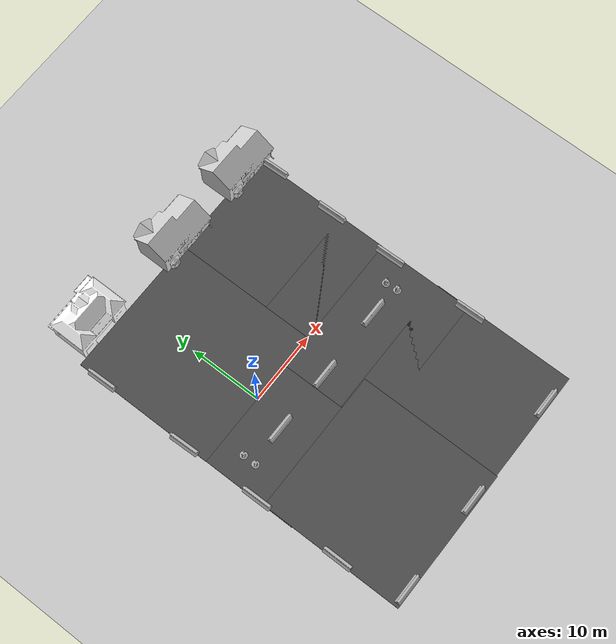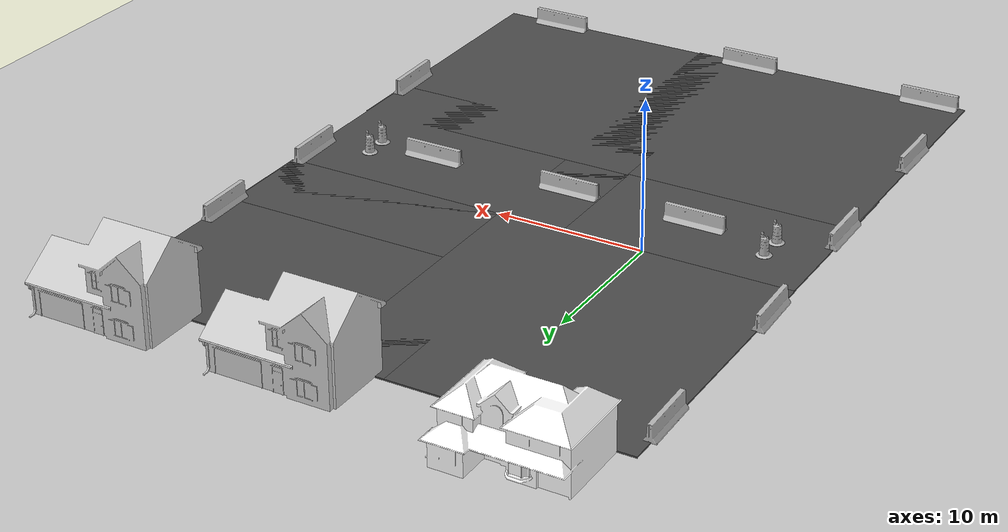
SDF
<sdf version="1.7">
 <world name="default">
  <light name="sun" type="directional">
   <pose>0 0 10 0 -0 0</pose>
   <diffuse>0.8 0.8 0.8 1</diffuse>
   <specular>0.2 0.2 0.2 1</specular>
   <attenuation>
    <range>1000</range>
    <constant>0.9</constant>
    <linear>0.01</linear>
    <quadratic>0.001</quadratic>
   </attenuation>
   <direction>-0.5 0.1 -0.9</direction>
   <spot><inner_angle>0</inner_angle><outer_angle>0</outer_angle><falloff>0</falloff></spot>
  </light>
  <model name="ground_plane">
   <static>1</static>
   <link name="link">
    <collision name="collision">
     <geometry><plane><normal>0 0 1</normal><size>100 100</size></plane></geometry>
     <surface><friction><ode><mu>100</mu><mu2>50</mu2></ode></friction></surface>
    </collision>
    <visual name="visual">
     <cast_shadows>0</cast_shadows>
     <geometry><plane><normal>0 0 1</normal><size>100 100</size></plane></geometry>
     <material>
      <script><uri>file://media/materials/scripts/gazebo.material</uri><name>Gazebo/Grey</name></script>
     </material>
    </visual>
    <velocity_decay><linear>0</linear><angular>0</angular></velocity_decay>
   </link>
  </model>
  <physics type="ode">
   <max_step_size>0.001</max_step_size>
   <real_time_factor>1</real_time_factor>
   <real_time_update_rate>1000</real_time_update_rate>
  </physics>
  <scene><ambient>0.4 0.4 0.4 1</ambient><background>0.7 0.7 0.7 1</background><shadows>1</shadows></scene>
  <spherical_coordinates>
   <surface_model>EARTH_WGS84</surface_model>
   <latitude_deg>0</latitude_deg>
   <longitude_deg>0</longitude_deg>
   <elevation>0</elevation>
   <heading_deg>0</heading_deg>
  </spherical_coordinates>
  <model name="asphalt_plane">
   <static>1</static>
   <link name="link">
    <collision name="collision"><geometry><box><size>20 20 0.1</size></box></geometry></collision>
    <visual name="visual">
     <cast_shadows>0</cast_shadows>
     <geometry><box><size>20 20 0.1</size></box></geometry>
     <material>
      <script>
       <uri>model://asphalt_plane/materials/scripts</uri>
       <uri>model://asphalt_plane/materials/textures</uri>
       <name>vrc/asphalt</name>
      </script>
     </material>
    </visual>
    <velocity_decay><linear>0</linear><angular>0</angular></velocity_decay>
   </link>
   <pose>0.030437 -3.13546 0 0 -0 0</pose>
  </model>
  <model name="jersey_barrier">
   <static>1</static>
   <link name="link">
    <visual name="visual">
     <geometry><mesh><uri>model://jersey_barrier/meshes/jersey_barrier.dae</uri></mesh></geometry>
    </visual>
    <collision name="upright">
     <pose>0 0 0.5715 0 -0 0</pose>
     <geometry><box><size>4.06542 0.3063 1.143</size></box></geometry>
    </collision>
    <collision name="base">
     <pose>0 0 0.032258 0 -0 0</pose>
     <geometry><box><size>4.06542 0.8107 0.064516</size></box></geometry>
    </collision>
    <collision name="base2">
     <pose>0 0 0.1 0 -0 0</pose>
     <geometry><box><size>4.06542 0.65 0.1</size></box></geometry>
    </collision>
    <collision name="base3">
     <pose>0 0 0.2 0 -0 0</pose>
     <geometry><box><size>4.06542 0.5 0.1</size></box></geometry>
    </collision>
    <collision name="left-angle">
     <pose>0 -0.224 0.2401 0.9 -0 0</pose>
     <geometry><box><size>4.06542 0.5 0.064516</size></box></geometry>
    </collision>
    <collision name="right-angle">
     <pose>0 0.224 0.2401 -0.9 0 0</pose>
     <geometry><box><size>4.06542 0.5 0.064516</size></box></geometry>
    </collision>
    <velocity_decay><linear>0</linear><angular>0</angular></velocity_decay>
   </link>
   <pose>21.0984 -28.2425 0 0 -0 0</pose>
  </model>
  <model name="jersey_barrier_0">
   <static>1</static>
   <link name="link">
    <visual name="visual">
     <geometry><mesh><uri>model://jersey_barrier/meshes/jersey_barrier.dae</uri></mesh></geometry>
    </visual>
    <collision name="upright">
     <pose>0 0 0.5715 0 -0 0</pose>
     <geometry><box><size>4.06542 0.3063 1.143</size></box></geometry>
    </collision>
    <collision name="base">
     <pose>0 0 0.032258 0 -0 0</pose>
     <geometry><box><size>4.06542 0.8107 0.064516</size></box></geometry>
    </collision>
    <collision name="base2">
     <pose>0 0 0.1 0 -0 0</pose>
     <geometry><box><size>4.06542 0.65 0.1</size></box></geometry>
    </collision>
    <collision name="base3">
     <pose>0 0 0.2 0 -0 0</pose>
     <geometry><box><size>4.06542 0.5 0.1</size></box></geometry>
    </collision>
    <collision name="left-angle">
     <pose>0 -0.224 0.2401 0.9 -0 0</pose>
     <geometry><box><size>4.06542 0.5 0.064516</size></box></geometry>
    </collision>
    <collision name="right-angle">
     <pose>0 0.224 0.2401 -0.9 0 0</pose>
     <geometry><box><size>4.06542 0.5 0.064516</size></box></geometry>
    </collision>
    <velocity_decay><linear>0</linear><angular>0</angular></velocity_decay>
   </link>
   <pose>5.90195 -28.2526 0 0 -0 0</pose>
  </model>
  <model name="jersey_barrier_1">
   <static>1</static>
   <link name="link">
    <visual name="visual">
     <geometry><mesh><uri>model://jersey_barrier/meshes/jersey_barrier.dae</uri></mesh></geometry>
    </visual>
    <collision name="upright">
     <pose>0 0 0.5715 0 -0 0</pose>
     <geometry><box><size>4.06542 0.3063 1.143</size></box></geometry>
    </collision>
    <collision name="base">
     <pose>0 0 0.032258 0 -0 0</pose>
     <geometry><box><size>4.06542 0.8107 0.064516</size></box></geometry>
    </collision>
    <collision name="base2">
     <pose>0 0 0.1 0 -0 0</pose>
     <geometry><box><size>4.06542 0.65 0.1</size></box></geometry>
    </collision>
    <collision name="base3">
     <pose>0 0 0.2 0 -0 0</pose>
     <geometry><box><size>4.06542 0.5 0.1</size></box></geometry>
    </collision>
    <collision name="left-angle">
     <pose>0 -0.224 0.2401 0.9 -0 0</pose>
     <geometry><box><size>4.06542 0.5 0.064516</size></box></geometry>
    </collision>
    <collision name="right-angle">
     <pose>0 0.224 0.2401 -0.9 0 0</pose>
     <geometry><box><size>4.06542 0.5 0.064516</size></box></geometry>
    </collision>
    <velocity_decay><linear>0</linear><angular>0</angular></velocity_decay>
   </link>
   <pose>-7.47394 -28.3953 0 0 -0 0</pose>
  </model>
  <model name="jersey_barrier_2">
   <static>1</static>
   <link name="link">
    <visual name="visual">
     <geometry><mesh><uri>model://jersey_barrier/meshes/jersey_barrier.dae</uri></mesh></geometry>
    </visual>
    <collision name="upright">
     <pose>0 0 0.5715 0 -0 0</pose>
     <geometry><box><size>4.06542 0.3063 1.143</size></box></geometry>
    </collision>
    <collision name="base">
     <pose>0 0 0.032258 0 -0 0</pose>
     <geometry><box><size>4.06542 0.8107 0.064516</size></box></geometry>
    </collision>
    <collision name="base2">
     <pose>0 0 0.1 0 -0 0</pose>
     <geometry><box><size>4.06542 0.65 0.1</size></box></geometry>
    </collision>
    <collision name="base3">
     <pose>0 0 0.2 0 -0 0</pose>
     <geometry><box><size>4.06542 0.5 0.1</size></box></geometry>
    </collision>
    <collision name="left-angle">
     <pose>0 -0.224 0.2401 0.9 -0 0</pose>
     <geometry><box><size>4.06542 0.5 0.064516</size></box></geometry>
    </collision>
    <collision name="right-angle">
     <pose>0 0.224 0.2401 -0.9 0 0</pose>
     <geometry><box><size>4.06542 0.5 0.064516</size></box></geometry>
    </collision>
    <velocity_decay><linear>0</linear><angular>0</angular></velocity_decay>
   </link>
   <pose>-9.62184 -19.7051 0 0 0 -1.57192</pose>
  </model>
  <model name="jersey_barrier_3">
   <static>1</static>
   <link name="link">
    <visual name="visual">
     <geometry><mesh><uri>model://jersey_barrier/meshes/jersey_barrier.dae</uri></mesh></geometry>
    </visual>
    <collision name="upright">
     <pose>0 0 0.5715 0 -0 0</pose>
     <geometry><box><size>4.06542 0.3063 1.143</size></box></geometry>
    </collision>
    <collision name="base">
     <pose>0 0 0.032258 0 -0 0</pose>
     <geometry><box><size>4.06542 0.8107 0.064516</size></box></geometry>
    </collision>
    <collision name="base2">
     <pose>0 0 0.1 0 -0 0</pose>
     <geometry><box><size>4.06542 0.65 0.1</size></box></geometry>
    </collision>
    <collision name="base3">
     <pose>0 0 0.2 0 -0 0</pose>
     <geometry><box><size>4.06542 0.5 0.1</size></box></geometry>
    </collision>
    <collision name="left-angle">
     <pose>0 -0.224 0.2401 0.9 -0 0</pose>
     <geometry><box><size>4.06542 0.5 0.064516</size></box></geometry>
    </collision>
    <collision name="right-angle">
     <pose>0 0.224 0.2401 -0.9 0 0</pose>
     <geometry><box><size>4.06542 0.5 0.064516</size></box></geometry>
    </collision>
    <velocity_decay><linear>0</linear><angular>0</angular></velocity_decay>
   </link>
   <pose>25.0903 -13.975 0 0 0 -1.55011</pose>
  </model>
  <model name="jersey_barrier_4">
   <static>1</static>
   <link name="link">
    <visual name="visual">
     <geometry><mesh><uri>model://jersey_barrier/meshes/jersey_barrier.dae</uri></mesh></geometry>
    </visual>
    <collision name="upright">
     <pose>0 0 0.5715 0 -0 0</pose>
     <geometry><box><size>4.06542 0.3063 1.143</size></box></geometry>
    </collision>
    <collision name="base">
     <pose>0 0 0.032258 0 -0 0</pose>
     <geometry><box><size>4.06542 0.8107 0.064516</size></box></geometry>
    </collision>
    <collision name="base2">
     <pose>0 0 0.1 0 -0 0</pose>
     <geometry><box><size>4.06542 0.65 0.1</size></box></geometry>
    </collision>
    <collision name="base3">
     <pose>0 0 0.2 0 -0 0</pose>
     <geometry><box><size>4.06542 0.5 0.1</size></box></geometry>
    </collision>
    <collision name="left-angle">
     <pose>0 -0.224 0.2401 0.9 -0 0</pose>
     <geometry><box><size>4.06542 0.5 0.064516</size></box></geometry>
    </collision>
    <collision name="right-angle">
     <pose>0 0.224 0.2401 -0.9 0 0</pose>
     <geometry><box><size>4.06542 0.5 0.064516</size></box></geometry>
    </collision>
    <velocity_decay><linear>0</linear><angular>0</angular></velocity_decay>
   </link>
   <pose>-9.79209 -7.708 0 0 0 -1.56057</pose>
  </model>
  <model name="jersey_barrier_5">
   <static>1</static>
   <link name="link">
    <visual name="visual">
     <geometry><mesh><uri>model://jersey_barrier/meshes/jersey_barrier.dae</uri></mesh></geometry>
    </visual>
    <collision name="upright">
     <pose>0 0 0.5715 0 -0 0</pose>
     <geometry><box><size>4.06542 0.3063 1.143</size></box></geometry>
    </collision>
    <collision name="base">
     <pose>0 0 0.032258 0 -0 0</pose>
     <geometry><box><size>4.06542 0.8107 0.064516</size></box></geometry>
    </collision>
    <collision name="base2">
     <pose>0 0 0.1 0 -0 0</pose>
     <geometry><box><size>4.06542 0.65 0.1</size></box></geometry>
    </collision>
    <collision name="base3">
     <pose>0 0 0.2 0 -0 0</pose>
     <geometry><box><size>4.06542 0.5 0.1</size></box></geometry>
    </collision>
    <collision name="left-angle">
     <pose>0 -0.224 0.2401 0.9 -0 0</pose>
     <geometry><box><size>4.06542 0.5 0.064516</size></box></geometry>
    </collision>
    <collision name="right-angle">
     <pose>0 0.224 0.2401 -0.9 0 0</pose>
     <geometry><box><size>4.06542 0.5 0.064516</size></box></geometry>
    </collision>
    <velocity_decay><linear>0</linear><angular>0</angular></velocity_decay>
   </link>
   <pose>24.9445 -1.63963 0 0 0 -1.55025</pose>
  </model>
  <model name="asphalt_plane_0">
   <static>1</static>
   <link name="link">
    <collision name="collision"><geometry><box><size>20 20 0.1</size></box></geometry></collision>
    <visual name="visual">
     <cast_shadows>0</cast_shadows>
     <geometry><box><size>20 20 0.1</size></box></geometry>
     <material>
      <script>
       <uri>model://asphalt_plane/materials/scripts</uri>
       <uri>model://asphalt_plane/materials/textures</uri>
       <name>vrc/asphalt</name>
      </script>
     </material>
    </visual>
    <velocity_decay><linear>0</linear><angular>0</angular></velocity_decay>
   </link>
   <pose>0 10 0 0 -0 0</pose>
  </model>
  <model name="jersey_barrier_8">
   <static>1</static>
   <link name="link">
    <visual name="visual">
     <geometry><mesh><uri>model://jersey_barrier/meshes/jersey_barrier.dae</uri></mesh></geometry>
    </visual>
    <collision name="upright">
     <pose>0 0 0.5715 0 -0 0</pose>
     <geometry><box><size>4.06542 0.3063 1.143</size></box></geometry>
    </collision>
    <collision name="base">
     <pose>0 0 0.032258 0 -0 0</pose>
     <geometry><box><size>4.06542 0.8107 0.064516</size></box></geometry>
    </collision>
    <collision name="base2">
     <pose>0 0 0.1 0 -0 0</pose>
     <geometry><box><size>4.06542 0.65 0.1</size></box></geometry>
    </collision>
    <collision name="base3">
     <pose>0 0 0.2 0 -0 0</pose>
     <geometry><box><size>4.06542 0.5 0.1</size></box></geometry>
    </collision>
    <collision name="left-angle">
     <pose>0 -0.224 0.2401 0.9 -0 0</pose>
     <geometry><box><size>4.06542 0.5 0.064516</size></box></geometry>
    </collision>
    <collision name="right-angle">
     <pose>0 0.224 0.2401 -0.9 0 0</pose>
     <geometry><box><size>4.06542 0.5 0.064516</size></box></geometry>
    </collision>
    <velocity_decay><linear>0</linear><angular>0</angular></velocity_decay>
   </link>
   <pose>25.1873 7.83728 0 0 0 -1.5463</pose>
  </model>
  <model name="jersey_barrier_9">
   <static>1</static>
   <link name="link">
    <visual name="visual">
     <geometry><mesh><uri>model://jersey_barrier/meshes/jersey_barrier.dae</uri></mesh></geometry>
    </visual>
    <collision name="upright">
     <pose>0 0 0.5715 0 -0 0</pose>
     <geometry><box><size>4.06542 0.3063 1.143</size></box></geometry>
    </collision>
    <collision name="base">
     <pose>0 0 0.032258 0 -0 0</pose>
     <geometry><box><size>4.06542 0.8107 0.064516</size></box></geometry>
    </collision>
    <collision name="base2">
     <pose>0 0 0.1 0 -0 0</pose>
     <geometry><box><size>4.06542 0.65 0.1</size></box></geometry>
    </collision>
    <collision name="base3">
     <pose>0 0 0.2 0 -0 0</pose>
     <geometry><box><size>4.06542 0.5 0.1</size></box></geometry>
    </collision>
    <collision name="left-angle">
     <pose>0 -0.224 0.2401 0.9 -0 0</pose>
     <geometry><box><size>4.06542 0.5 0.064516</size></box></geometry>
    </collision>
    <collision name="right-angle">
     <pose>0 0.224 0.2401 -0.9 0 0</pose>
     <geometry><box><size>4.06542 0.5 0.064516</size></box></geometry>
    </collision>
    <velocity_decay><linear>0</linear><angular>0</angular></velocity_decay>
   </link>
   <pose>25.6023 17.5115 0 0 0 -1.53629</pose>
  </model>
  <model name="jersey_barrier_10">
   <static>1</static>
   <link name="link">
    <visual name="visual">
     <geometry><mesh><uri>model://jersey_barrier/meshes/jersey_barrier.dae</uri></mesh></geometry>
    </visual>
    <collision name="upright">
     <pose>0 0 0.5715 0 -0 0</pose>
     <geometry><box><size>4.06542 0.3063 1.143</size></box></geometry>
    </collision>
    <collision name="base">
     <pose>0 0 0.032258 0 -0 0</pose>
     <geometry><box><size>4.06542 0.8107 0.064516</size></box></geometry>
    </collision>
    <collision name="base2">
     <pose>0 0 0.1 0 -0 0</pose>
     <geometry><box><size>4.06542 0.65 0.1</size></box></geometry>
    </collision>
    <collision name="base3">
     <pose>0 0 0.2 0 -0 0</pose>
     <geometry><box><size>4.06542 0.5 0.1</size></box></geometry>
    </collision>
    <collision name="left-angle">
     <pose>0 -0.224 0.2401 0.9 -0 0</pose>
     <geometry><box><size>4.06542 0.5 0.064516</size></box></geometry>
    </collision>
    <collision name="right-angle">
     <pose>0 0.224 0.2401 -0.9 0 0</pose>
     <geometry><box><size>4.06542 0.5 0.064516</size></box></geometry>
    </collision>
    <velocity_decay><linear>0</linear><angular>0</angular></velocity_decay>
   </link>
   <pose>-10.0111 3.35383 0 0 0 -1.54096</pose>
  </model>
  <model name="jersey_barrier_11">
   <static>1</static>
   <link name="link">
    <visual name="visual">
     <geometry><mesh><uri>model://jersey_barrier/meshes/jersey_barrier.dae</uri></mesh></geometry>
    </visual>
    <collision name="upright">
     <pose>0 0 0.5715 0 -0 0</pose>
     <geometry><box><size>4.06542 0.3063 1.143</size></box></geometry>
    </collision>
    <collision name="base">
     <pose>0 0 0.032258 0 -0 0</pose>
     <geometry><box><size>4.06542 0.8107 0.064516</size></box></geometry>
    </collision>
    <collision name="base2">
     <pose>0 0 0.1 0 -0 0</pose>
     <geometry><box><size>4.06542 0.65 0.1</size></box></geometry>
    </collision>
    <collision name="base3">
     <pose>0 0 0.2 0 -0 0</pose>
     <geometry><box><size>4.06542 0.5 0.1</size></box></geometry>
    </collision>
    <collision name="left-angle">
     <pose>0 -0.224 0.2401 0.9 -0 0</pose>
     <geometry><box><size>4.06542 0.5 0.064516</size></box></geometry>
    </collision>
    <collision name="right-angle">
     <pose>0 0.224 0.2401 -0.9 0 0</pose>
     <geometry><box><size>4.06542 0.5 0.064516</size></box></geometry>
    </collision>
    <velocity_decay><linear>0</linear><angular>0</angular></velocity_decay>
   </link>
   <pose>-9.89857 16.4946 0 0 0 -1.55018</pose>
  </model>
  <model name="House 2">
   <static>1</static>
   <link name="link">
    <collision name="collision">
     <geometry><mesh><uri>model://house_2/meshes/house_2.dae</uri></mesh></geometry>
    </collision>
    <visual name="visual">
     <geometry><mesh><uri>model://house_2/meshes/house_2.dae</uri></mesh></geometry>
     <material>
      <script>
       <uri>model://house_2/materials/scripts</uri>
       <uri>model://house_2/materials/textures</uri>
       <uri>model://house_1/materials/textures</uri>
       <name>House_2/Diffuse</name>
      </script>
      <shader type="normal_map_object_space">
       <normal_map>model://house_1/materials/textures/House_1_Normal.png</normal_map>
      </shader>
     </material>
    </visual>
    <velocity_decay><linear>0</linear><angular>0</angular></velocity_decay>
   </link>
   <pose>-5.55865 22.5873 0 0 -0 0</pose>
  </model>
  <model name="House 3">
   <static>1</static>
   <link name="link">
    <collision name="collision">
     <geometry><mesh><uri>model://house_3/meshes/house_3.dae</uri></mesh></geometry>
    </collision>
    <visual name="visual">
     <geometry><mesh><uri>model://house_3/meshes/house_3.dae</uri></mesh></geometry>
     <material>
      <script>
       <uri>model://house_3/materials/scripts</uri>
       <uri>model://house_3/materials/textures</uri>
       <uri>model://house_1/materials/textures</uri>
       <name>House_3/Diffuse</name>
      </script>
      <shader type="normal_map_object_space">
       <normal_map>model://house_1/materials/textures/House_1_Normal.png</normal_map>
      </shader>
     </material>
    </visual>
    <velocity_decay><linear>0</linear><angular>0</angular></velocity_decay>
   </link>
   <pose>10.5708 21.6062 0 0 -0 0</pose>
  </model>
  <model name="Construction Barrel_2">
   <link name="link">
    <inertial>
     <pose>0 0 0.4 0 -0 0</pose>
     <mass>500</mass>
     <inertia><ixx>51.2096</ixx><iyy>51.2096</iyy><izz>25</izz><ixy>0</ixy><ixz>0</ixz><iyz>0</iyz></inertia>
    </inertial>
    <collision name="collision">
     <geometry><mesh><uri>model://construction_barrel/meshes/construction_barrel.dae</uri></mesh></geometry>
    </collision>
    <visual name="visual">
     <geometry><mesh><uri>model://construction_barrel/meshes/construction_barrel.dae</uri></mesh></geometry>
    </visual>
    <velocity_decay><linear>0</linear><angular>0</angular></velocity_decay>
   </link>
   <pose>-6.60954 -3.12159 0.049999 -2e-06 -3e-06 0.00023</pose>
   <static>0</static>
  </model>
  <model name="Construction Barrel_3">
   <link name="link">
    <inertial>
     <pose>0 0 0.4 0 -0 0</pose>
     <mass>500</mass>
     <inertia><ixx>51.2096</ixx><iyy>51.2096</iyy><izz>25</izz><ixy>0</ixy><ixz>0</ixz><iyz>0</iyz></inertia>
    </inertial>
    <collision name="collision">
     <geometry><mesh><uri>model://construction_barrel/meshes/construction_barrel.dae</uri></mesh></geometry>
    </collision>
    <visual name="visual">
     <geometry><mesh><uri>model://construction_barrel/meshes/construction_barrel.dae</uri></mesh></geometry>
    </visual>
    <velocity_decay><linear>0</linear><angular>0</angular></velocity_decay>
   </link>
   <pose>21.733 -3.37039 0.049997 -4e-06 -5e-06 0.000227</pose>
   <static>0</static>
  </model>
  <model name="asphalt_plane_1">
   <static>1</static>
   <link name="link">
    <collision name="collision"><geometry><box><size>20 20 0.1</size></box></geometry></collision>
    <visual name="visual">
     <cast_shadows>0</cast_shadows>
     <geometry><box><size>20 20 0.1</size></box></geometry>
     <material>
      <script>
       <uri>model://asphalt_plane/materials/scripts</uri>
       <uri>model://asphalt_plane/materials/textures</uri>
       <name>vrc/asphalt</name>
      </script>
     </material>
    </visual>
    <velocity_decay><linear>0</linear><angular>0</angular></velocity_decay>
   </link>
   <pose>15.4977 10 0 0 -0 0</pose>
  </model>
  <model name="asphalt_plane_2">
   <static>1</static>
   <link name="link">
    <collision name="collision"><geometry><box><size>20 20 0.1</size></box></geometry></collision>
    <visual name="visual">
     <cast_shadows>0</cast_shadows>
     <geometry><box><size>20 20 0.1</size></box></geometry>
     <material>
      <script>
       <uri>model://asphalt_plane/materials/scripts</uri>
       <uri>model://asphalt_plane/materials/textures</uri>
       <name>vrc/asphalt</name>
      </script>
     </material>
    </visual>
    <velocity_decay><linear>0</linear><angular>0</angular></velocity_decay>
   </link>
   <pose>0.098625 -18.8432 0 0 -0 0</pose>
  </model>
  <model name="asphalt_plane_3">
   <static>1</static>
   <link name="link">
    <collision name="collision"><geometry><box><size>20 20 0.1</size></box></geometry></collision>
    <visual name="visual">
     <cast_shadows>0</cast_shadows>
     <geometry><box><size>20 20 0.1</size></box></geometry>
     <material>
      <script>
       <uri>model://asphalt_plane/materials/scripts</uri>
       <uri>model://asphalt_plane/materials/textures</uri>
       <name>vrc/asphalt</name>
      </script>
     </material>
    </visual>
    <velocity_decay><linear>0</linear><angular>0</angular></velocity_decay>
   </link>
   <pose>15.5136 -18.7124 0 0 -0 0</pose>
  </model>
  <model name="asphalt_plane_4">
   <static>1</static>
   <link name="link">
    <collision name="collision"><geometry><box><size>20 20 0.1</size></box></geometry></collision>
    <visual name="visual">
     <cast_shadows>0</cast_shadows>
     <geometry><box><size>20 20 0.1</size></box></geometry>
     <material>
      <script>
       <uri>model://asphalt_plane/materials/scripts</uri>
       <uri>model://asphalt_plane/materials/textures</uri>
       <name>vrc/asphalt</name>
      </script>
     </material>
    </visual>
    <velocity_decay><linear>0</linear><angular>0</angular></velocity_decay>
   </link>
   <pose>15.4321 -3.44172 0 0 -0 0</pose>
  </model>
  <model name="House 3_0">
   <static>1</static>
   <link name="link">
    <collision name="collision">
     <geometry><mesh><uri>model://house_3/meshes/house_3.dae</uri></mesh></geometry>
    </collision>
    <visual name="visual">
     <geometry><mesh><uri>model://house_3/meshes/house_3.dae</uri></mesh></geometry>
     <material>
      <script>
       <uri>model://house_3/materials/scripts</uri>
       <uri>model://house_3/materials/textures</uri>
       <uri>model://house_1/materials/textures</uri>
       <name>House_3/Diffuse</name>
      </script>
      <shader type="normal_map_object_space">
       <normal_map>model://house_1/materials/textures/House_1_Normal.png</normal_map>
      </shader>
     </material>
    </visual>
    <velocity_decay><linear>0</linear><angular>0</angular></velocity_decay>
   </link>
   <pose>23 21.4174 0 0 -0 0</pose>
  </model>
  <model name="Construction Barrel">
   <link name="link">
    <inertial>
     <pose>0 0 0.4 0 -0 0</pose>
     <mass>500</mass>
     <inertia><ixx>51.2096</ixx><iyy>51.2096</iyy><izz>25</izz><ixy>0</ixy><ixz>0</ixz><iyz>0</iyz></inertia>
    </inertial>
    <collision name="collision">
     <geometry><mesh><uri>model://construction_barrel/meshes/construction_barrel.dae</uri></mesh></geometry>
    </collision>
    <visual name="visual">
     <geometry><mesh><uri>model://construction_barrel/meshes/construction_barrel.dae</uri></mesh></geometry>
    </visual>
    <velocity_decay><linear>0</linear><angular>0</angular></velocity_decay>
   </link>
   <pose>-6.61236 -4.95295 0.049999 -1e-06 -2e-06 4.2e-05</pose>
   <static>0</static>
  </model>
  <model name="Construction Barrel_0">
   <link name="link">
    <inertial>
     <pose>0 0 0.4 0 -0 0</pose>
     <mass>500</mass>
     <inertia><ixx>51.2096</ixx><iyy>51.2096</iyy><izz>25</izz><ixy>0</ixy><ixz>0</ixz><iyz>0</iyz></inertia>
    </inertial>
    <collision name="collision">
     <geometry><mesh><uri>model://construction_barrel/meshes/construction_barrel.dae</uri></mesh></geometry>
    </collision>
    <visual name="visual">
     <geometry><mesh><uri>model://construction_barrel/meshes/construction_barrel.dae</uri></mesh></geometry>
    </visual>
    <velocity_decay><linear>0</linear><angular>0</angular></velocity_decay>
   </link>
   <pose>21.8481 -5.03808 0.049999 -1e-06 -2e-06 3.8e-05</pose>
   <static>0</static>
  </model>
  <gravity>0 0 -9.8</gravity>
  <magnetic_field>6e-06 2.3e-05 -4.2e-05</magnetic_field>
  <atmosphere type="adiabatic"/>
  <audio><device>default</device></audio>
  <model name="jersey_barrier_6">
   <static>1</static>
   <link name="link">
    <visual name="visual">
     <geometry><mesh><uri>model://jersey_barrier/meshes/jersey_barrier.dae</uri></mesh></geometry>
    </visual>
    <collision name="upright">
     <pose>0 0 0.5715 0 -0 0</pose>
     <geometry><box><size>4.06542 0.3063 1.143</size></box></geometry>
    </collision>
    <collision name="base">
     <pose>0 0 0.032258 0 -0 0</pose>
     <geometry><box><size>4.06542 0.8107 0.064516</size></box></geometry>
    </collision>
    <collision name="base2">
     <pose>0 0 0.1 0 -0 0</pose>
     <geometry><box><size>4.06542 0.65 0.1</size></box></geometry>
    </collision>
    <collision name="base3">
     <pose>0 0 0.2 0 -0 0</pose>
     <geometry><box><size>4.06542 0.5 0.1</size></box></geometry>
    </collision>
    <collision name="left-angle">
     <pose>0 -0.224 0.2401 0.9 -0 0</pose>
     <geometry><box><size>4.06542 0.5 0.064516</size></box></geometry>
    </collision>
    <collision name="right-angle">
     <pose>0 0.224 0.2401 -0.9 0 0</pose>
     <geometry><box><size>4.06542 0.5 0.064516</size></box></geometry>
    </collision>
   </link>
   <pose>-1.30172 -4.57155 0 0 -0 0</pose>
  </model>
  <model name="jersey_barrier_7">
   <static>1</static>
   <link name="link">
    <visual name="visual">
     <geometry><mesh><uri>model://jersey_barrier/meshes/jersey_barrier.dae</uri></mesh></geometry>
    </visual>
    <collision name="upright">
     <pose>0 0 0.5715 0 -0 0</pose>
     <geometry><box><size>4.06542 0.3063 1.143</size></box></geometry>
    </collision>
    <collision name="base">
     <pose>0 0 0.032258 0 -0 0</pose>
     <geometry><box><size>4.06542 0.8107 0.064516</size></box></geometry>
    </collision>
    <collision name="base2">
     <pose>0 0 0.1 0 -0 0</pose>
     <geometry><box><size>4.06542 0.65 0.1</size></box></geometry>
    </collision>
    <collision name="base3">
     <pose>0 0 0.2 0 -0 0</pose>
     <geometry><box><size>4.06542 0.5 0.1</size></box></geometry>
    </collision>
    <collision name="left-angle">
     <pose>0 -0.224 0.2401 0.9 -0 0</pose>
     <geometry><box><size>4.06542 0.5 0.064516</size></box></geometry>
    </collision>
    <collision name="right-angle">
     <pose>0 0.224 0.2401 -0.9 0 0</pose>
     <geometry><box><size>4.06542 0.5 0.064516</size></box></geometry>
    </collision>
   </link>
   <pose>7.52344 -4.62667 0 0 -0 0</pose>
  </model>
  <model name="jersey_barrier_12">
   <static>1</static>
   <link name="link">
    <visual name="visual">
     <geometry><mesh><uri>model://jersey_barrier/meshes/jersey_barrier.dae</uri></mesh></geometry>
    </visual>
    <collision name="upright">
     <pose>0 0 0.5715 0 -0 0</pose>
     <geometry><box><size>4.06542 0.3063 1.143</size></box></geometry>
    </collision>
    <collision name="base">
     <pose>0 0 0.032258 0 -0 0</pose>
     <geometry><box><size>4.06542 0.8107 0.064516</size></box></geometry>
    </collision>
    <collision name="base2">
     <pose>0 0 0.1 0 -0 0</pose>
     <geometry><box><size>4.06542 0.65 0.1</size></box></geometry>
    </collision>
    <collision name="base3">
     <pose>0 0 0.2 0 -0 0</pose>
     <geometry><box><size>4.06542 0.5 0.1</size></box></geometry>
    </collision>
    <collision name="left-angle">
     <pose>0 -0.224 0.2401 0.9 -0 0</pose>
     <geometry><box><size>4.06542 0.5 0.064516</size></box></geometry>
    </collision>
    <collision name="right-angle">
     <pose>0 0.224 0.2401 -0.9 0 0</pose>
     <geometry><box><size>4.06542 0.5 0.064516</size></box></geometry>
    </collision>
   </link>
   <pose>17.5014 -4.51299 0 0 -0 0</pose>
  </model>
  <plugin name="gazebo_occupancy_map" filename="libgazebo_2dmap_plugin.so">
   <map_resolution>0.1</map_resolution>
   <map_height>5.0</map_height>
   <map_size_x>100</map_size_x>
   <map_size_y>100</map_size_y>
   <init_robot_x>0</init_robot_x>
   <init_robot_y>0</init_robot_y>
  </plugin>
 </world>
</sdf>
